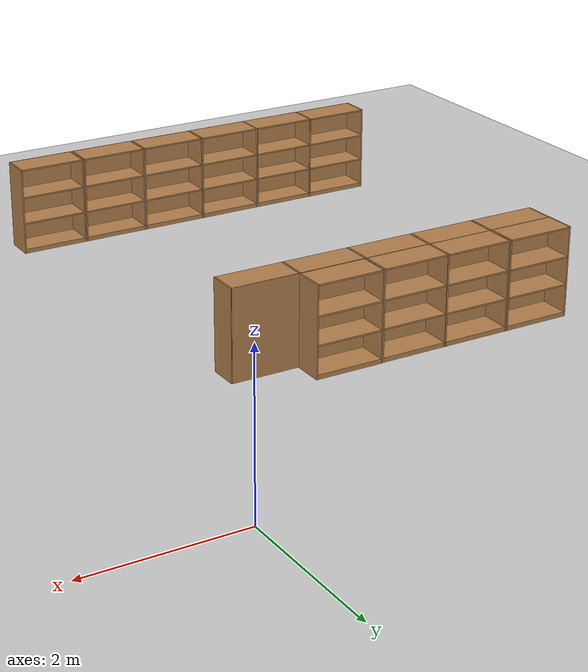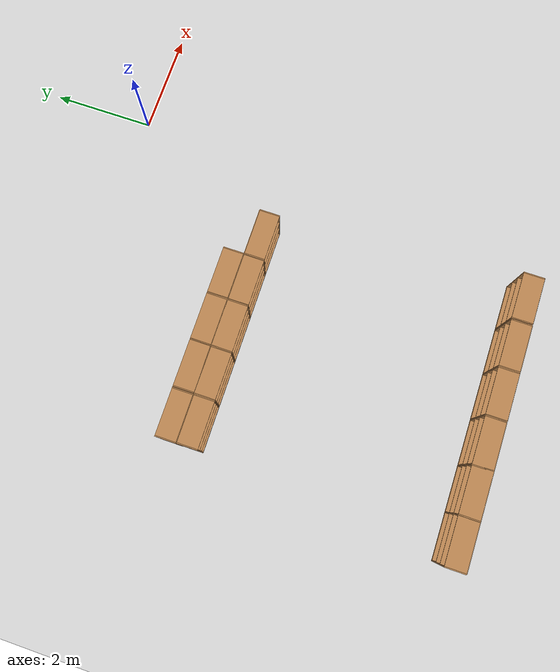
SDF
<sdf version="1.7">
 <world name="default">
  <model name="ground_plane">
   <static>1</static>
   <link name="link">
    <collision name="collision">
     <geometry><plane><normal>0 0 1</normal><size>100 100</size></plane></geometry>
     <surface><friction><ode><mu>100</mu><mu2>50</mu2></ode></friction></surface>
    </collision>
    <visual name="visual">
     <cast_shadows>0</cast_shadows>
     <geometry><plane><normal>0 0 1</normal><size>100 100</size></plane></geometry>
     <material>
      <script><uri>file://media/materials/scripts/gazebo.material</uri><name>Gazebo/Grey</name></script>
     </material>
    </visual>
   </link>
  </model>
  <model name="bookshelf_clone_0">
   <static>1</static>
   <link name="link">
    <inertial><mass>1</mass></inertial>
    <collision name="back">
     <pose>0 0.005 0.6 0 -0 0</pose>
     <geometry><box><size>0.9 0.01 1.2</size></box></geometry>
    </collision>
    <visual name="visual1">
     <pose>0 0.005 0.6 0 -0 0</pose>
     <geometry><box><size>0.9 0.01 1.2</size></box></geometry>
     <material>
      <script><uri>file://media/materials/scripts/gazebo.material</uri><name>Gazebo/Wood</name></script>
     </material>
    </visual>
    <collision name="left_side">
     <pose>0.45 -0.195 0.6 0 -0 0</pose>
     <geometry><box><size>0.02 0.4 1.2</size></box></geometry>
    </collision>
    <visual name="visual2">
     <pose>0.45 -0.195 0.6 0 -0 0</pose>
     <geometry><box><size>0.02 0.4 1.2</size></box></geometry>
     <material>
      <script><uri>file://media/materials/scripts/gazebo.material</uri><name>Gazebo/Wood</name></script>
     </material>
    </visual>
    <collision name="right_side">
     <pose>-0.45 -0.195 0.6 0 -0 0</pose>
     <geometry><box><size>0.02 0.4 1.2</size></box></geometry>
    </collision>
    <visual name="visual3">
     <pose>-0.45 -0.195 0.6 0 -0 0</pose>
     <geometry><box><size>0.02 0.4 1.2</size></box></geometry>
     <material>
      <script><uri>file://media/materials/scripts/gazebo.material</uri><name>Gazebo/Wood</name></script>
     </material>
    </visual>
    <collision name="bottom">
     <pose>0 -0.195 0.03 0 -0 0</pose>
     <geometry><box><size>0.88 0.4 0.06</size></box></geometry>
    </collision>
    <visual name="visual4">
     <pose>0 -0.195 0.03 0 -0 0</pose>
     <geometry><box><size>0.88 0.4 0.06</size></box></geometry>
     <material>
      <script><uri>file://media/materials/scripts/gazebo.material</uri><name>Gazebo/Wood</name></script>
     </material>
    </visual>
    <collision name="top">
     <pose>0 -0.195 1.19 0 -0 0</pose>
     <geometry><box><size>0.88 0.4 0.02</size></box></geometry>
    </collision>
    <visual name="visual5">
     <pose>0 -0.195 1.19 0 -0 0</pose>
     <geometry><box><size>0.88 0.4 0.02</size></box></geometry>
     <material>
      <script><uri>file://media/materials/scripts/gazebo.material</uri><name>Gazebo/Wood</name></script>
     </material>
    </visual>
    <collision name="low_shelf">
     <pose>0 -0.195 0.43 0 -0 0</pose>
     <geometry><box><size>0.88 0.4 0.02</size></box></geometry>
    </collision>
    <visual name="visual6">
     <pose>0 -0.195 0.43 0 -0 0</pose>
     <geometry><box><size>0.88 0.4 0.02</size></box></geometry>
     <material>
      <script><uri>file://media/materials/scripts/gazebo.material</uri><name>Gazebo/Wood</name></script>
     </material>
    </visual>
    <collision name="high_shelf">
     <pose>0 -0.195 0.8 0 -0 0</pose>
     <geometry><box><size>0.88 0.4 0.02</size></box></geometry>
    </collision>
    <visual name="visual7">
     <pose>0 -0.195 0.8 0 -0 0</pose>
     <geometry><box><size>0.88 0.4 0.02</size></box></geometry>
     <material>
      <script><uri>file://media/materials/scripts/gazebo.material</uri><name>Gazebo/Wood</name></script>
     </material>
    </visual>
   </link>
   <pose>-1.44106 -8.39134 0 0 0 -3.14107</pose>
  </model>
  <model name="bookshelf_clone_0_clone">
   <static>1</static>
   <link name="link">
    <inertial><mass>1</mass></inertial>
    <collision name="back">
     <pose>0 0.005 0.6 0 -0 0</pose>
     <geometry><box><size>0.9 0.01 1.2</size></box></geometry>
    </collision>
    <visual name="visual1">
     <pose>0 0.005 0.6 0 -0 0</pose>
     <geometry><box><size>0.9 0.01 1.2</size></box></geometry>
     <material>
      <script><uri>file://media/materials/scripts/gazebo.material</uri><name>Gazebo/Wood</name></script>
     </material>
    </visual>
    <collision name="left_side">
     <pose>0.45 -0.195 0.6 0 -0 0</pose>
     <geometry><box><size>0.02 0.4 1.2</size></box></geometry>
    </collision>
    <visual name="visual2">
     <pose>0.45 -0.195 0.6 0 -0 0</pose>
     <geometry><box><size>0.02 0.4 1.2</size></box></geometry>
     <material>
      <script><uri>file://media/materials/scripts/gazebo.material</uri><name>Gazebo/Wood</name></script>
     </material>
    </visual>
    <collision name="right_side">
     <pose>-0.45 -0.195 0.6 0 -0 0</pose>
     <geometry><box><size>0.02 0.4 1.2</size></box></geometry>
    </collision>
    <visual name="visual3">
     <pose>-0.45 -0.195 0.6 0 -0 0</pose>
     <geometry><box><size>0.02 0.4 1.2</size></box></geometry>
     <material>
      <script><uri>file://media/materials/scripts/gazebo.material</uri><name>Gazebo/Wood</name></script>
     </material>
    </visual>
    <collision name="bottom">
     <pose>0 -0.195 0.03 0 -0 0</pose>
     <geometry><box><size>0.88 0.4 0.06</size></box></geometry>
    </collision>
    <visual name="visual4">
     <pose>0 -0.195 0.03 0 -0 0</pose>
     <geometry><box><size>0.88 0.4 0.06</size></box></geometry>
     <material>
      <script><uri>file://media/materials/scripts/gazebo.material</uri><name>Gazebo/Wood</name></script>
     </material>
    </visual>
    <collision name="top">
     <pose>0 -0.195 1.19 0 -0 0</pose>
     <geometry><box><size>0.88 0.4 0.02</size></box></geometry>
    </collision>
    <visual name="visual5">
     <pose>0 -0.195 1.19 0 -0 0</pose>
     <geometry><box><size>0.88 0.4 0.02</size></box></geometry>
     <material>
      <script><uri>file://media/materials/scripts/gazebo.material</uri><name>Gazebo/Wood</name></script>
     </material>
    </visual>
    <collision name="low_shelf">
     <pose>0 -0.195 0.43 0 -0 0</pose>
     <geometry><box><size>0.88 0.4 0.02</size></box></geometry>
    </collision>
    <visual name="visual6">
     <pose>0 -0.195 0.43 0 -0 0</pose>
     <geometry><box><size>0.88 0.4 0.02</size></box></geometry>
     <material>
      <script><uri>file://media/materials/scripts/gazebo.material</uri><name>Gazebo/Wood</name></script>
     </material>
    </visual>
    <collision name="high_shelf">
     <pose>0 -0.195 0.8 0 -0 0</pose>
     <geometry><box><size>0.88 0.4 0.02</size></box></geometry>
    </collision>
    <visual name="visual7">
     <pose>0 -0.195 0.8 0 -0 0</pose>
     <geometry><box><size>0.88 0.4 0.02</size></box></geometry>
     <material>
      <script><uri>file://media/materials/scripts/gazebo.material</uri><name>Gazebo/Wood</name></script>
     </material>
    </visual>
   </link>
   <pose>-2.37014 -8.39134 0 0 0 -3.14107</pose>
  </model>
  <model name="bookshelf_clone_0_clone_0">
   <static>1</static>
   <link name="link">
    <inertial><mass>1</mass></inertial>
    <collision name="back">
     <pose>0 0.005 0.6 0 -0 0</pose>
     <geometry><box><size>0.9 0.01 1.2</size></box></geometry>
    </collision>
    <visual name="visual1">
     <pose>0 0.005 0.6 0 -0 0</pose>
     <geometry><box><size>0.9 0.01 1.2</size></box></geometry>
     <material>
      <script><uri>file://media/materials/scripts/gazebo.material</uri><name>Gazebo/Wood</name></script>
     </material>
    </visual>
    <collision name="left_side">
     <pose>0.45 -0.195 0.6 0 -0 0</pose>
     <geometry><box><size>0.02 0.4 1.2</size></box></geometry>
    </collision>
    <visual name="visual2">
     <pose>0.45 -0.195 0.6 0 -0 0</pose>
     <geometry><box><size>0.02 0.4 1.2</size></box></geometry>
     <material>
      <script><uri>file://media/materials/scripts/gazebo.material</uri><name>Gazebo/Wood</name></script>
     </material>
    </visual>
    <collision name="right_side">
     <pose>-0.45 -0.195 0.6 0 -0 0</pose>
     <geometry><box><size>0.02 0.4 1.2</size></box></geometry>
    </collision>
    <visual name="visual3">
     <pose>-0.45 -0.195 0.6 0 -0 0</pose>
     <geometry><box><size>0.02 0.4 1.2</size></box></geometry>
     <material>
      <script><uri>file://media/materials/scripts/gazebo.material</uri><name>Gazebo/Wood</name></script>
     </material>
    </visual>
    <collision name="bottom">
     <pose>0 -0.195 0.03 0 -0 0</pose>
     <geometry><box><size>0.88 0.4 0.06</size></box></geometry>
    </collision>
    <visual name="visual4">
     <pose>0 -0.195 0.03 0 -0 0</pose>
     <geometry><box><size>0.88 0.4 0.06</size></box></geometry>
     <material>
      <script><uri>file://media/materials/scripts/gazebo.material</uri><name>Gazebo/Wood</name></script>
     </material>
    </visual>
    <collision name="top">
     <pose>0 -0.195 1.19 0 -0 0</pose>
     <geometry><box><size>0.88 0.4 0.02</size></box></geometry>
    </collision>
    <visual name="visual5">
     <pose>0 -0.195 1.19 0 -0 0</pose>
     <geometry><box><size>0.88 0.4 0.02</size></box></geometry>
     <material>
      <script><uri>file://media/materials/scripts/gazebo.material</uri><name>Gazebo/Wood</name></script>
     </material>
    </visual>
    <collision name="low_shelf">
     <pose>0 -0.195 0.43 0 -0 0</pose>
     <geometry><box><size>0.88 0.4 0.02</size></box></geometry>
    </collision>
    <visual name="visual6">
     <pose>0 -0.195 0.43 0 -0 0</pose>
     <geometry><box><size>0.88 0.4 0.02</size></box></geometry>
     <material>
      <script><uri>file://media/materials/scripts/gazebo.material</uri><name>Gazebo/Wood</name></script>
     </material>
    </visual>
    <collision name="high_shelf">
     <pose>0 -0.195 0.8 0 -0 0</pose>
     <geometry><box><size>0.88 0.4 0.02</size></box></geometry>
    </collision>
    <visual name="visual7">
     <pose>0 -0.195 0.8 0 -0 0</pose>
     <geometry><box><size>0.88 0.4 0.02</size></box></geometry>
     <material>
      <script><uri>file://media/materials/scripts/gazebo.material</uri><name>Gazebo/Wood</name></script>
     </material>
    </visual>
   </link>
   <pose>-3.28877 -8.39134 0 0 0 -3.14107</pose>
  </model>
  <model name="bookshelf_clone_0_clone_0_clone">
   <static>1</static>
   <link name="link">
    <inertial><mass>1</mass></inertial>
    <collision name="back">
     <pose>0 0.005 0.6 0 -0 0</pose>
     <geometry><box><size>0.9 0.01 1.2</size></box></geometry>
    </collision>
    <visual name="visual1">
     <pose>0 0.005 0.6 0 -0 0</pose>
     <geometry><box><size>0.9 0.01 1.2</size></box></geometry>
     <material>
      <script><uri>file://media/materials/scripts/gazebo.material</uri><name>Gazebo/Wood</name></script>
     </material>
    </visual>
    <collision name="left_side">
     <pose>0.45 -0.195 0.6 0 -0 0</pose>
     <geometry><box><size>0.02 0.4 1.2</size></box></geometry>
    </collision>
    <visual name="visual2">
     <pose>0.45 -0.195 0.6 0 -0 0</pose>
     <geometry><box><size>0.02 0.4 1.2</size></box></geometry>
     <material>
      <script><uri>file://media/materials/scripts/gazebo.material</uri><name>Gazebo/Wood</name></script>
     </material>
    </visual>
    <collision name="right_side">
     <pose>-0.45 -0.195 0.6 0 -0 0</pose>
     <geometry><box><size>0.02 0.4 1.2</size></box></geometry>
    </collision>
    <visual name="visual3">
     <pose>-0.45 -0.195 0.6 0 -0 0</pose>
     <geometry><box><size>0.02 0.4 1.2</size></box></geometry>
     <material>
      <script><uri>file://media/materials/scripts/gazebo.material</uri><name>Gazebo/Wood</name></script>
     </material>
    </visual>
    <collision name="bottom">
     <pose>0 -0.195 0.03 0 -0 0</pose>
     <geometry><box><size>0.88 0.4 0.06</size></box></geometry>
    </collision>
    <visual name="visual4">
     <pose>0 -0.195 0.03 0 -0 0</pose>
     <geometry><box><size>0.88 0.4 0.06</size></box></geometry>
     <material>
      <script><uri>file://media/materials/scripts/gazebo.material</uri><name>Gazebo/Wood</name></script>
     </material>
    </visual>
    <collision name="top">
     <pose>0 -0.195 1.19 0 -0 0</pose>
     <geometry><box><size>0.88 0.4 0.02</size></box></geometry>
    </collision>
    <visual name="visual5">
     <pose>0 -0.195 1.19 0 -0 0</pose>
     <geometry><box><size>0.88 0.4 0.02</size></box></geometry>
     <material>
      <script><uri>file://media/materials/scripts/gazebo.material</uri><name>Gazebo/Wood</name></script>
     </material>
    </visual>
    <collision name="low_shelf">
     <pose>0 -0.195 0.43 0 -0 0</pose>
     <geometry><box><size>0.88 0.4 0.02</size></box></geometry>
    </collision>
    <visual name="visual6">
     <pose>0 -0.195 0.43 0 -0 0</pose>
     <geometry><box><size>0.88 0.4 0.02</size></box></geometry>
     <material>
      <script><uri>file://media/materials/scripts/gazebo.material</uri><name>Gazebo/Wood</name></script>
     </material>
    </visual>
    <collision name="high_shelf">
     <pose>0 -0.195 0.8 0 -0 0</pose>
     <geometry><box><size>0.88 0.4 0.02</size></box></geometry>
    </collision>
    <visual name="visual7">
     <pose>0 -0.195 0.8 0 -0 0</pose>
     <geometry><box><size>0.88 0.4 0.02</size></box></geometry>
     <material>
      <script><uri>file://media/materials/scripts/gazebo.material</uri><name>Gazebo/Wood</name></script>
     </material>
    </visual>
   </link>
   <pose>-4.203 -8.39134 0 0 0 -3.14107</pose>
  </model>
  <model name="bookshelf_clone_0_clone_0_clone_clone_clone_clone_clone_1">
   <static>1</static>
   <link name="link">
    <inertial><mass>1</mass></inertial>
    <collision name="back">
     <pose>0 0.005 0.6 0 -0 0</pose>
     <geometry><box><size>0.9 0.01 1.2</size></box></geometry>
    </collision>
    <visual name="visual1">
     <pose>0 0.005 0.6 0 -0 0</pose>
     <geometry><box><size>0.9 0.01 1.2</size></box></geometry>
     <material>
      <script><uri>file://media/materials/scripts/gazebo.material</uri><name>Gazebo/Wood</name></script>
     </material>
    </visual>
    <collision name="left_side">
     <pose>0.45 -0.195 0.6 0 -0 0</pose>
     <geometry><box><size>0.02 0.4 1.2</size></box></geometry>
    </collision>
    <visual name="visual2">
     <pose>0.45 -0.195 0.6 0 -0 0</pose>
     <geometry><box><size>0.02 0.4 1.2</size></box></geometry>
     <material>
      <script><uri>file://media/materials/scripts/gazebo.material</uri><name>Gazebo/Wood</name></script>
     </material>
    </visual>
    <collision name="right_side">
     <pose>-0.45 -0.195 0.6 0 -0 0</pose>
     <geometry><box><size>0.02 0.4 1.2</size></box></geometry>
    </collision>
    <visual name="visual3">
     <pose>-0.45 -0.195 0.6 0 -0 0</pose>
     <geometry><box><size>0.02 0.4 1.2</size></box></geometry>
     <material>
      <script><uri>file://media/materials/scripts/gazebo.material</uri><name>Gazebo/Wood</name></script>
     </material>
    </visual>
    <collision name="bottom">
     <pose>0 -0.195 0.03 0 -0 0</pose>
     <geometry><box><size>0.88 0.4 0.06</size></box></geometry>
    </collision>
    <visual name="visual4">
     <pose>0 -0.195 0.03 0 -0 0</pose>
     <geometry><box><size>0.88 0.4 0.06</size></box></geometry>
     <material>
      <script><uri>file://media/materials/scripts/gazebo.material</uri><name>Gazebo/Wood</name></script>
     </material>
    </visual>
    <collision name="top">
     <pose>0 -0.195 1.19 0 -0 0</pose>
     <geometry><box><size>0.88 0.4 0.02</size></box></geometry>
    </collision>
    <visual name="visual5">
     <pose>0 -0.195 1.19 0 -0 0</pose>
     <geometry><box><size>0.88 0.4 0.02</size></box></geometry>
     <material>
      <script><uri>file://media/materials/scripts/gazebo.material</uri><name>Gazebo/Wood</name></script>
     </material>
    </visual>
    <collision name="low_shelf">
     <pose>0 -0.195 0.43 0 -0 0</pose>
     <geometry><box><size>0.88 0.4 0.02</size></box></geometry>
    </collision>
    <visual name="visual6">
     <pose>0 -0.195 0.43 0 -0 0</pose>
     <geometry><box><size>0.88 0.4 0.02</size></box></geometry>
     <material>
      <script><uri>file://media/materials/scripts/gazebo.material</uri><name>Gazebo/Wood</name></script>
     </material>
    </visual>
    <collision name="high_shelf">
     <pose>0 -0.195 0.8 0 -0 0</pose>
     <geometry><box><size>0.88 0.4 0.02</size></box></geometry>
    </collision>
    <visual name="visual7">
     <pose>0 -0.195 0.8 0 -0 0</pose>
     <geometry><box><size>0.88 0.4 0.02</size></box></geometry>
     <material>
      <script><uri>file://media/materials/scripts/gazebo.material</uri><name>Gazebo/Wood</name></script>
     </material>
    </visual>
   </link>
   <pose>-2.75543 -2.94994 0 0 0 -3.14107</pose>
  </model>
  <model name="bookshelf_clone_0_clone_0_clone_clone_clone_clone_clone_1_clone">
   <static>1</static>
   <link name="link">
    <inertial><mass>1</mass></inertial>
    <collision name="back">
     <pose>0 0.005 0.6 0 -0 0</pose>
     <geometry><box><size>0.9 0.01 1.2</size></box></geometry>
    </collision>
    <visual name="visual1">
     <pose>0 0.005 0.6 0 -0 0</pose>
     <geometry><box><size>0.9 0.01 1.2</size></box></geometry>
     <material>
      <script><uri>file://media/materials/scripts/gazebo.material</uri><name>Gazebo/Wood</name></script>
     </material>
    </visual>
    <collision name="left_side">
     <pose>0.45 -0.195 0.6 0 -0 0</pose>
     <geometry><box><size>0.02 0.4 1.2</size></box></geometry>
    </collision>
    <visual name="visual2">
     <pose>0.45 -0.195 0.6 0 -0 0</pose>
     <geometry><box><size>0.02 0.4 1.2</size></box></geometry>
     <material>
      <script><uri>file://media/materials/scripts/gazebo.material</uri><name>Gazebo/Wood</name></script>
     </material>
    </visual>
    <collision name="right_side">
     <pose>-0.45 -0.195 0.6 0 -0 0</pose>
     <geometry><box><size>0.02 0.4 1.2</size></box></geometry>
    </collision>
    <visual name="visual3">
     <pose>-0.45 -0.195 0.6 0 -0 0</pose>
     <geometry><box><size>0.02 0.4 1.2</size></box></geometry>
     <material>
      <script><uri>file://media/materials/scripts/gazebo.material</uri><name>Gazebo/Wood</name></script>
     </material>
    </visual>
    <collision name="bottom">
     <pose>0 -0.195 0.03 0 -0 0</pose>
     <geometry><box><size>0.88 0.4 0.06</size></box></geometry>
    </collision>
    <visual name="visual4">
     <pose>0 -0.195 0.03 0 -0 0</pose>
     <geometry><box><size>0.88 0.4 0.06</size></box></geometry>
     <material>
      <script><uri>file://media/materials/scripts/gazebo.material</uri><name>Gazebo/Wood</name></script>
     </material>
    </visual>
    <collision name="top">
     <pose>0 -0.195 1.19 0 -0 0</pose>
     <geometry><box><size>0.88 0.4 0.02</size></box></geometry>
    </collision>
    <visual name="visual5">
     <pose>0 -0.195 1.19 0 -0 0</pose>
     <geometry><box><size>0.88 0.4 0.02</size></box></geometry>
     <material>
      <script><uri>file://media/materials/scripts/gazebo.material</uri><name>Gazebo/Wood</name></script>
     </material>
    </visual>
    <collision name="low_shelf">
     <pose>0 -0.195 0.43 0 -0 0</pose>
     <geometry><box><size>0.88 0.4 0.02</size></box></geometry>
    </collision>
    <visual name="visual6">
     <pose>0 -0.195 0.43 0 -0 0</pose>
     <geometry><box><size>0.88 0.4 0.02</size></box></geometry>
     <material>
      <script><uri>file://media/materials/scripts/gazebo.material</uri><name>Gazebo/Wood</name></script>
     </material>
    </visual>
    <collision name="high_shelf">
     <pose>0 -0.195 0.8 0 -0 0</pose>
     <geometry><box><size>0.88 0.4 0.02</size></box></geometry>
    </collision>
    <visual name="visual7">
     <pose>0 -0.195 0.8 0 -0 0</pose>
     <geometry><box><size>0.88 0.4 0.02</size></box></geometry>
     <material>
      <script><uri>file://media/materials/scripts/gazebo.material</uri><name>Gazebo/Wood</name></script>
     </material>
    </visual>
   </link>
   <pose>-3.67093 -2.94994 0.004614 0 0 -3.14107</pose>
  </model>
  <model name="bookshelf_clone_0_clone_0_clone_clone_clone_clone_clone_1_clone_clone">
   <static>1</static>
   <link name="link">
    <inertial><mass>1</mass></inertial>
    <collision name="back">
     <pose>0 0.005 0.6 0 -0 0</pose>
     <geometry><box><size>0.9 0.01 1.2</size></box></geometry>
    </collision>
    <visual name="visual1">
     <pose>0 0.005 0.6 0 -0 0</pose>
     <geometry><box><size>0.9 0.01 1.2</size></box></geometry>
     <material>
      <script><uri>file://media/materials/scripts/gazebo.material</uri><name>Gazebo/Wood</name></script>
     </material>
    </visual>
    <collision name="left_side">
     <pose>0.45 -0.195 0.6 0 -0 0</pose>
     <geometry><box><size>0.02 0.4 1.2</size></box></geometry>
    </collision>
    <visual name="visual2">
     <pose>0.45 -0.195 0.6 0 -0 0</pose>
     <geometry><box><size>0.02 0.4 1.2</size></box></geometry>
     <material>
      <script><uri>file://media/materials/scripts/gazebo.material</uri><name>Gazebo/Wood</name></script>
     </material>
    </visual>
    <collision name="right_side">
     <pose>-0.45 -0.195 0.6 0 -0 0</pose>
     <geometry><box><size>0.02 0.4 1.2</size></box></geometry>
    </collision>
    <visual name="visual3">
     <pose>-0.45 -0.195 0.6 0 -0 0</pose>
     <geometry><box><size>0.02 0.4 1.2</size></box></geometry>
     <material>
      <script><uri>file://media/materials/scripts/gazebo.material</uri><name>Gazebo/Wood</name></script>
     </material>
    </visual>
    <collision name="bottom">
     <pose>0 -0.195 0.03 0 -0 0</pose>
     <geometry><box><size>0.88 0.4 0.06</size></box></geometry>
    </collision>
    <visual name="visual4">
     <pose>0 -0.195 0.03 0 -0 0</pose>
     <geometry><box><size>0.88 0.4 0.06</size></box></geometry>
     <material>
      <script><uri>file://media/materials/scripts/gazebo.material</uri><name>Gazebo/Wood</name></script>
     </material>
    </visual>
    <collision name="top">
     <pose>0 -0.195 1.19 0 -0 0</pose>
     <geometry><box><size>0.88 0.4 0.02</size></box></geometry>
    </collision>
    <visual name="visual5">
     <pose>0 -0.195 1.19 0 -0 0</pose>
     <geometry><box><size>0.88 0.4 0.02</size></box></geometry>
     <material>
      <script><uri>file://media/materials/scripts/gazebo.material</uri><name>Gazebo/Wood</name></script>
     </material>
    </visual>
    <collision name="low_shelf">
     <pose>0 -0.195 0.43 0 -0 0</pose>
     <geometry><box><size>0.88 0.4 0.02</size></box></geometry>
    </collision>
    <visual name="visual6">
     <pose>0 -0.195 0.43 0 -0 0</pose>
     <geometry><box><size>0.88 0.4 0.02</size></box></geometry>
     <material>
      <script><uri>file://media/materials/scripts/gazebo.material</uri><name>Gazebo/Wood</name></script>
     </material>
    </visual>
    <collision name="high_shelf">
     <pose>0 -0.195 0.8 0 -0 0</pose>
     <geometry><box><size>0.88 0.4 0.02</size></box></geometry>
    </collision>
    <visual name="visual7">
     <pose>0 -0.195 0.8 0 -0 0</pose>
     <geometry><box><size>0.88 0.4 0.02</size></box></geometry>
     <material>
      <script><uri>file://media/materials/scripts/gazebo.material</uri><name>Gazebo/Wood</name></script>
     </material>
    </visual>
   </link>
   <pose>-4.57913 -2.94994 0.004614 0 0 -3.14107</pose>
  </model>
  <model name="bookshelf_clone_0_clone_0_clone_clone_clone_clone_clone_1_clone_clone_clone">
   <static>1</static>
   <link name="link">
    <inertial><mass>1</mass></inertial>
    <collision name="back">
     <pose>0 0.005 0.6 0 -0 0</pose>
     <geometry><box><size>0.9 0.01 1.2</size></box></geometry>
    </collision>
    <visual name="visual1">
     <pose>0 0.005 0.6 0 -0 0</pose>
     <geometry><box><size>0.9 0.01 1.2</size></box></geometry>
     <material>
      <script><uri>file://media/materials/scripts/gazebo.material</uri><name>Gazebo/Wood</name></script>
     </material>
    </visual>
    <collision name="left_side">
     <pose>0.45 -0.195 0.6 0 -0 0</pose>
     <geometry><box><size>0.02 0.4 1.2</size></box></geometry>
    </collision>
    <visual name="visual2">
     <pose>0.45 -0.195 0.6 0 -0 0</pose>
     <geometry><box><size>0.02 0.4 1.2</size></box></geometry>
     <material>
      <script><uri>file://media/materials/scripts/gazebo.material</uri><name>Gazebo/Wood</name></script>
     </material>
    </visual>
    <collision name="right_side">
     <pose>-0.45 -0.195 0.6 0 -0 0</pose>
     <geometry><box><size>0.02 0.4 1.2</size></box></geometry>
    </collision>
    <visual name="visual3">
     <pose>-0.45 -0.195 0.6 0 -0 0</pose>
     <geometry><box><size>0.02 0.4 1.2</size></box></geometry>
     <material>
      <script><uri>file://media/materials/scripts/gazebo.material</uri><name>Gazebo/Wood</name></script>
     </material>
    </visual>
    <collision name="bottom">
     <pose>0 -0.195 0.03 0 -0 0</pose>
     <geometry><box><size>0.88 0.4 0.06</size></box></geometry>
    </collision>
    <visual name="visual4">
     <pose>0 -0.195 0.03 0 -0 0</pose>
     <geometry><box><size>0.88 0.4 0.06</size></box></geometry>
     <material>
      <script><uri>file://media/materials/scripts/gazebo.material</uri><name>Gazebo/Wood</name></script>
     </material>
    </visual>
    <collision name="top">
     <pose>0 -0.195 1.19 0 -0 0</pose>
     <geometry><box><size>0.88 0.4 0.02</size></box></geometry>
    </collision>
    <visual name="visual5">
     <pose>0 -0.195 1.19 0 -0 0</pose>
     <geometry><box><size>0.88 0.4 0.02</size></box></geometry>
     <material>
      <script><uri>file://media/materials/scripts/gazebo.material</uri><name>Gazebo/Wood</name></script>
     </material>
    </visual>
    <collision name="low_shelf">
     <pose>0 -0.195 0.43 0 -0 0</pose>
     <geometry><box><size>0.88 0.4 0.02</size></box></geometry>
    </collision>
    <visual name="visual6">
     <pose>0 -0.195 0.43 0 -0 0</pose>
     <geometry><box><size>0.88 0.4 0.02</size></box></geometry>
     <material>
      <script><uri>file://media/materials/scripts/gazebo.material</uri><name>Gazebo/Wood</name></script>
     </material>
    </visual>
    <collision name="high_shelf">
     <pose>0 -0.195 0.8 0 -0 0</pose>
     <geometry><box><size>0.88 0.4 0.02</size></box></geometry>
    </collision>
    <visual name="visual7">
     <pose>0 -0.195 0.8 0 -0 0</pose>
     <geometry><box><size>0.88 0.4 0.02</size></box></geometry>
     <material>
      <script><uri>file://media/materials/scripts/gazebo.material</uri><name>Gazebo/Wood</name></script>
     </material>
    </visual>
   </link>
   <pose>-5.50801 -2.94994 0.004614 0 0 -3.14107</pose>
  </model>
  <model name="bookshelf_clone_clone">
   <static>1</static>
   <link name="link">
    <inertial><mass>1</mass></inertial>
    <collision name="back">
     <pose>0 0.005 0.6 0 -0 0</pose>
     <geometry><box><size>0.9 0.01 1.2</size></box></geometry>
    </collision>
    <visual name="visual1">
     <pose>0 0.005 0.6 0 -0 0</pose>
     <geometry><box><size>0.9 0.01 1.2</size></box></geometry>
     <material>
      <script><uri>file://media/materials/scripts/gazebo.material</uri><name>Gazebo/Wood</name></script>
     </material>
    </visual>
    <collision name="left_side">
     <pose>0.45 -0.195 0.6 0 -0 0</pose>
     <geometry><box><size>0.02 0.4 1.2</size></box></geometry>
    </collision>
    <visual name="visual2">
     <pose>0.45 -0.195 0.6 0 -0 0</pose>
     <geometry><box><size>0.02 0.4 1.2</size></box></geometry>
     <material>
      <script><uri>file://media/materials/scripts/gazebo.material</uri><name>Gazebo/Wood</name></script>
     </material>
    </visual>
    <collision name="right_side">
     <pose>-0.45 -0.195 0.6 0 -0 0</pose>
     <geometry><box><size>0.02 0.4 1.2</size></box></geometry>
    </collision>
    <visual name="visual3">
     <pose>-0.45 -0.195 0.6 0 -0 0</pose>
     <geometry><box><size>0.02 0.4 1.2</size></box></geometry>
     <material>
      <script><uri>file://media/materials/scripts/gazebo.material</uri><name>Gazebo/Wood</name></script>
     </material>
    </visual>
    <collision name="bottom">
     <pose>0 -0.195 0.03 0 -0 0</pose>
     <geometry><box><size>0.88 0.4 0.06</size></box></geometry>
    </collision>
    <visual name="visual4">
     <pose>0 -0.195 0.03 0 -0 0</pose>
     <geometry><box><size>0.88 0.4 0.06</size></box></geometry>
     <material>
      <script><uri>file://media/materials/scripts/gazebo.material</uri><name>Gazebo/Wood</name></script>
     </material>
    </visual>
    <collision name="top">
     <pose>0 -0.195 1.19 0 -0 0</pose>
     <geometry><box><size>0.88 0.4 0.02</size></box></geometry>
    </collision>
    <visual name="visual5">
     <pose>0 -0.195 1.19 0 -0 0</pose>
     <geometry><box><size>0.88 0.4 0.02</size></box></geometry>
     <material>
      <script><uri>file://media/materials/scripts/gazebo.material</uri><name>Gazebo/Wood</name></script>
     </material>
    </visual>
    <collision name="low_shelf">
     <pose>0 -0.195 0.43 0 -0 0</pose>
     <geometry><box><size>0.88 0.4 0.02</size></box></geometry>
    </collision>
    <visual name="visual6">
     <pose>0 -0.195 0.43 0 -0 0</pose>
     <geometry><box><size>0.88 0.4 0.02</size></box></geometry>
     <material>
      <script><uri>file://media/materials/scripts/gazebo.material</uri><name>Gazebo/Wood</name></script>
     </material>
    </visual>
    <collision name="high_shelf">
     <pose>0 -0.195 0.8 0 -0 0</pose>
     <geometry><box><size>0.88 0.4 0.02</size></box></geometry>
    </collision>
    <visual name="visual7">
     <pose>0 -0.195 0.8 0 -0 0</pose>
     <geometry><box><size>0.88 0.4 0.02</size></box></geometry>
     <material>
      <script><uri>file://media/materials/scripts/gazebo.material</uri><name>Gazebo/Wood</name></script>
     </material>
    </visual>
   </link>
   <pose>-5.08941 -8.39134 0 0 0 -3.14107</pose>
  </model>
  <model name="bookshelf_clone_clone_clone">
   <static>1</static>
   <link name="link">
    <inertial><mass>1</mass></inertial>
    <collision name="back">
     <pose>0 0.005 0.6 0 -0 0</pose>
     <geometry><box><size>0.9 0.01 1.2</size></box></geometry>
    </collision>
    <visual name="visual1">
     <pose>0 0.005 0.6 0 -0 0</pose>
     <geometry><box><size>0.9 0.01 1.2</size></box></geometry>
     <material>
      <script><uri>file://media/materials/scripts/gazebo.material</uri><name>Gazebo/Wood</name></script>
     </material>
    </visual>
    <collision name="left_side">
     <pose>0.45 -0.195 0.6 0 -0 0</pose>
     <geometry><box><size>0.02 0.4 1.2</size></box></geometry>
    </collision>
    <visual name="visual2">
     <pose>0.45 -0.195 0.6 0 -0 0</pose>
     <geometry><box><size>0.02 0.4 1.2</size></box></geometry>
     <material>
      <script><uri>file://media/materials/scripts/gazebo.material</uri><name>Gazebo/Wood</name></script>
     </material>
    </visual>
    <collision name="right_side">
     <pose>-0.45 -0.195 0.6 0 -0 0</pose>
     <geometry><box><size>0.02 0.4 1.2</size></box></geometry>
    </collision>
    <visual name="visual3">
     <pose>-0.45 -0.195 0.6 0 -0 0</pose>
     <geometry><box><size>0.02 0.4 1.2</size></box></geometry>
     <material>
      <script><uri>file://media/materials/scripts/gazebo.material</uri><name>Gazebo/Wood</name></script>
     </material>
    </visual>
    <collision name="bottom">
     <pose>0 -0.195 0.03 0 -0 0</pose>
     <geometry><box><size>0.88 0.4 0.06</size></box></geometry>
    </collision>
    <visual name="visual4">
     <pose>0 -0.195 0.03 0 -0 0</pose>
     <geometry><box><size>0.88 0.4 0.06</size></box></geometry>
     <material>
      <script><uri>file://media/materials/scripts/gazebo.material</uri><name>Gazebo/Wood</name></script>
     </material>
    </visual>
    <collision name="top">
     <pose>0 -0.195 1.19 0 -0 0</pose>
     <geometry><box><size>0.88 0.4 0.02</size></box></geometry>
    </collision>
    <visual name="visual5">
     <pose>0 -0.195 1.19 0 -0 0</pose>
     <geometry><box><size>0.88 0.4 0.02</size></box></geometry>
     <material>
      <script><uri>file://media/materials/scripts/gazebo.material</uri><name>Gazebo/Wood</name></script>
     </material>
    </visual>
    <collision name="low_shelf">
     <pose>0 -0.195 0.43 0 -0 0</pose>
     <geometry><box><size>0.88 0.4 0.02</size></box></geometry>
    </collision>
    <visual name="visual6">
     <pose>0 -0.195 0.43 0 -0 0</pose>
     <geometry><box><size>0.88 0.4 0.02</size></box></geometry>
     <material>
      <script><uri>file://media/materials/scripts/gazebo.material</uri><name>Gazebo/Wood</name></script>
     </material>
    </visual>
    <collision name="high_shelf">
     <pose>0 -0.195 0.8 0 -0 0</pose>
     <geometry><box><size>0.88 0.4 0.02</size></box></geometry>
    </collision>
    <visual name="visual7">
     <pose>0 -0.195 0.8 0 -0 0</pose>
     <geometry><box><size>0.88 0.4 0.02</size></box></geometry>
     <material>
      <script><uri>file://media/materials/scripts/gazebo.material</uri><name>Gazebo/Wood</name></script>
     </material>
    </visual>
   </link>
   <pose>-5.99408 -8.39134 0 0 0 -3.14107</pose>
  </model>
  <model name="bookshelf_clone_0_clone_0_clone_clone_clone_clone_clone_1_clone_clone_clone_clone_clone_clone_clone_clone_clone_clone_0_clone_clone_clone_clone_clone_0_clone_0">
   <static>1</static>
   <link name="link">
    <inertial><mass>1</mass></inertial>
    <collision name="back">
     <pose>0 0.005 0.6 0 -0 0</pose>
     <geometry><box><size>0.9 0.01 1.2</size></box></geometry>
    </collision>
    <visual name="visual1">
     <pose>0 0.005 0.6 0 -0 0</pose>
     <geometry><box><size>0.9 0.01 1.2</size></box></geometry>
     <material>
      <script><uri>file://media/materials/scripts/gazebo.material</uri><name>Gazebo/Wood</name></script>
     </material>
    </visual>
    <collision name="left_side">
     <pose>0.45 -0.195 0.6 0 -0 0</pose>
     <geometry><box><size>0.02 0.4 1.2</size></box></geometry>
    </collision>
    <visual name="visual2">
     <pose>0.45 -0.195 0.6 0 -0 0</pose>
     <geometry><box><size>0.02 0.4 1.2</size></box></geometry>
     <material>
      <script><uri>file://media/materials/scripts/gazebo.material</uri><name>Gazebo/Wood</name></script>
     </material>
    </visual>
    <collision name="right_side">
     <pose>-0.45 -0.195 0.6 0 -0 0</pose>
     <geometry><box><size>0.02 0.4 1.2</size></box></geometry>
    </collision>
    <visual name="visual3">
     <pose>-0.45 -0.195 0.6 0 -0 0</pose>
     <geometry><box><size>0.02 0.4 1.2</size></box></geometry>
     <material>
      <script><uri>file://media/materials/scripts/gazebo.material</uri><name>Gazebo/Wood</name></script>
     </material>
    </visual>
    <collision name="bottom">
     <pose>0 -0.195 0.03 0 -0 0</pose>
     <geometry><box><size>0.88 0.4 0.06</size></box></geometry>
    </collision>
    <visual name="visual4">
     <pose>0 -0.195 0.03 0 -0 0</pose>
     <geometry><box><size>0.88 0.4 0.06</size></box></geometry>
     <material>
      <script><uri>file://media/materials/scripts/gazebo.material</uri><name>Gazebo/Wood</name></script>
     </material>
    </visual>
    <collision name="top">
     <pose>0 -0.195 1.19 0 -0 0</pose>
     <geometry><box><size>0.88 0.4 0.02</size></box></geometry>
    </collision>
    <visual name="visual5">
     <pose>0 -0.195 1.19 0 -0 0</pose>
     <geometry><box><size>0.88 0.4 0.02</size></box></geometry>
     <material>
      <script><uri>file://media/materials/scripts/gazebo.material</uri><name>Gazebo/Wood</name></script>
     </material>
    </visual>
    <collision name="low_shelf">
     <pose>0 -0.195 0.43 0 -0 0</pose>
     <geometry><box><size>0.88 0.4 0.02</size></box></geometry>
    </collision>
    <visual name="visual6">
     <pose>0 -0.195 0.43 0 -0 0</pose>
     <geometry><box><size>0.88 0.4 0.02</size></box></geometry>
     <material>
      <script><uri>file://media/materials/scripts/gazebo.material</uri><name>Gazebo/Wood</name></script>
     </material>
    </visual>
    <collision name="high_shelf">
     <pose>0 -0.195 0.8 0 -0 0</pose>
     <geometry><box><size>0.88 0.4 0.02</size></box></geometry>
    </collision>
    <visual name="visual7">
     <pose>0 -0.195 0.8 0 -0 0</pose>
     <geometry><box><size>0.88 0.4 0.02</size></box></geometry>
     <material>
      <script><uri>file://media/materials/scripts/gazebo.material</uri><name>Gazebo/Wood</name></script>
     </material>
    </visual>
   </link>
   <pose>-1.8471 -2.966 0.004614 0 -0 0.000147</pose>
  </model>
  <model name="bookshelf_clone_0_clone_0_clone_clone_clone_clone_clone_1_clone_clone_clone_clone_clone_clone_clone_clone_clone_clone_0_clone_clone_clone_clone_clone_0_clone_0_clone">
   <static>1</static>
   <link name="link">
    <inertial><mass>1</mass></inertial>
    <collision name="back">
     <pose>0 0.005 0.6 0 -0 0</pose>
     <geometry><box><size>0.9 0.01 1.2</size></box></geometry>
    </collision>
    <visual name="visual1">
     <pose>0 0.005 0.6 0 -0 0</pose>
     <geometry><box><size>0.9 0.01 1.2</size></box></geometry>
     <material>
      <script><uri>file://media/materials/scripts/gazebo.material</uri><name>Gazebo/Wood</name></script>
     </material>
    </visual>
    <collision name="left_side">
     <pose>0.45 -0.195 0.6 0 -0 0</pose>
     <geometry><box><size>0.02 0.4 1.2</size></box></geometry>
    </collision>
    <visual name="visual2">
     <pose>0.45 -0.195 0.6 0 -0 0</pose>
     <geometry><box><size>0.02 0.4 1.2</size></box></geometry>
     <material>
      <script><uri>file://media/materials/scripts/gazebo.material</uri><name>Gazebo/Wood</name></script>
     </material>
    </visual>
    <collision name="right_side">
     <pose>-0.45 -0.195 0.6 0 -0 0</pose>
     <geometry><box><size>0.02 0.4 1.2</size></box></geometry>
    </collision>
    <visual name="visual3">
     <pose>-0.45 -0.195 0.6 0 -0 0</pose>
     <geometry><box><size>0.02 0.4 1.2</size></box></geometry>
     <material>
      <script><uri>file://media/materials/scripts/gazebo.material</uri><name>Gazebo/Wood</name></script>
     </material>
    </visual>
    <collision name="bottom">
     <pose>0 -0.195 0.03 0 -0 0</pose>
     <geometry><box><size>0.88 0.4 0.06</size></box></geometry>
    </collision>
    <visual name="visual4">
     <pose>0 -0.195 0.03 0 -0 0</pose>
     <geometry><box><size>0.88 0.4 0.06</size></box></geometry>
     <material>
      <script><uri>file://media/materials/scripts/gazebo.material</uri><name>Gazebo/Wood</name></script>
     </material>
    </visual>
    <collision name="top">
     <pose>0 -0.195 1.19 0 -0 0</pose>
     <geometry><box><size>0.88 0.4 0.02</size></box></geometry>
    </collision>
    <visual name="visual5">
     <pose>0 -0.195 1.19 0 -0 0</pose>
     <geometry><box><size>0.88 0.4 0.02</size></box></geometry>
     <material>
      <script><uri>file://media/materials/scripts/gazebo.material</uri><name>Gazebo/Wood</name></script>
     </material>
    </visual>
    <collision name="low_shelf">
     <pose>0 -0.195 0.43 0 -0 0</pose>
     <geometry><box><size>0.88 0.4 0.02</size></box></geometry>
    </collision>
    <visual name="visual6">
     <pose>0 -0.195 0.43 0 -0 0</pose>
     <geometry><box><size>0.88 0.4 0.02</size></box></geometry>
     <material>
      <script><uri>file://media/materials/scripts/gazebo.material</uri><name>Gazebo/Wood</name></script>
     </material>
    </visual>
    <collision name="high_shelf">
     <pose>0 -0.195 0.8 0 -0 0</pose>
     <geometry><box><size>0.88 0.4 0.02</size></box></geometry>
    </collision>
    <visual name="visual7">
     <pose>0 -0.195 0.8 0 -0 0</pose>
     <geometry><box><size>0.88 0.4 0.02</size></box></geometry>
     <material>
      <script><uri>file://media/materials/scripts/gazebo.material</uri><name>Gazebo/Wood</name></script>
     </material>
    </visual>
   </link>
   <pose>-2.76069 -2.966 0.004614 0 -0 0.000147</pose>
  </model>
  <model name="bookshelf_clone_0_clone_0_clone_clone_clone_clone_clone_1_clone_clone_clone_clone_clone_clone_clone_clone_clone_clone_0_clone_clone_clone_clone_clone_0_clone_0_clone_clone">
   <static>1</static>
   <link name="link">
    <inertial><mass>1</mass></inertial>
    <collision name="back">
     <pose>0 0.005 0.6 0 -0 0</pose>
     <geometry><box><size>0.9 0.01 1.2</size></box></geometry>
    </collision>
    <visual name="visual1">
     <pose>0 0.005 0.6 0 -0 0</pose>
     <geometry><box><size>0.9 0.01 1.2</size></box></geometry>
     <material>
      <script><uri>file://media/materials/scripts/gazebo.material</uri><name>Gazebo/Wood</name></script>
     </material>
    </visual>
    <collision name="left_side">
     <pose>0.45 -0.195 0.6 0 -0 0</pose>
     <geometry><box><size>0.02 0.4 1.2</size></box></geometry>
    </collision>
    <visual name="visual2">
     <pose>0.45 -0.195 0.6 0 -0 0</pose>
     <geometry><box><size>0.02 0.4 1.2</size></box></geometry>
     <material>
      <script><uri>file://media/materials/scripts/gazebo.material</uri><name>Gazebo/Wood</name></script>
     </material>
    </visual>
    <collision name="right_side">
     <pose>-0.45 -0.195 0.6 0 -0 0</pose>
     <geometry><box><size>0.02 0.4 1.2</size></box></geometry>
    </collision>
    <visual name="visual3">
     <pose>-0.45 -0.195 0.6 0 -0 0</pose>
     <geometry><box><size>0.02 0.4 1.2</size></box></geometry>
     <material>
      <script><uri>file://media/materials/scripts/gazebo.material</uri><name>Gazebo/Wood</name></script>
     </material>
    </visual>
    <collision name="bottom">
     <pose>0 -0.195 0.03 0 -0 0</pose>
     <geometry><box><size>0.88 0.4 0.06</size></box></geometry>
    </collision>
    <visual name="visual4">
     <pose>0 -0.195 0.03 0 -0 0</pose>
     <geometry><box><size>0.88 0.4 0.06</size></box></geometry>
     <material>
      <script><uri>file://media/materials/scripts/gazebo.material</uri><name>Gazebo/Wood</name></script>
     </material>
    </visual>
    <collision name="top">
     <pose>0 -0.195 1.19 0 -0 0</pose>
     <geometry><box><size>0.88 0.4 0.02</size></box></geometry>
    </collision>
    <visual name="visual5">
     <pose>0 -0.195 1.19 0 -0 0</pose>
     <geometry><box><size>0.88 0.4 0.02</size></box></geometry>
     <material>
      <script><uri>file://media/materials/scripts/gazebo.material</uri><name>Gazebo/Wood</name></script>
     </material>
    </visual>
    <collision name="low_shelf">
     <pose>0 -0.195 0.43 0 -0 0</pose>
     <geometry><box><size>0.88 0.4 0.02</size></box></geometry>
    </collision>
    <visual name="visual6">
     <pose>0 -0.195 0.43 0 -0 0</pose>
     <geometry><box><size>0.88 0.4 0.02</size></box></geometry>
     <material>
      <script><uri>file://media/materials/scripts/gazebo.material</uri><name>Gazebo/Wood</name></script>
     </material>
    </visual>
    <collision name="high_shelf">
     <pose>0 -0.195 0.8 0 -0 0</pose>
     <geometry><box><size>0.88 0.4 0.02</size></box></geometry>
    </collision>
    <visual name="visual7">
     <pose>0 -0.195 0.8 0 -0 0</pose>
     <geometry><box><size>0.88 0.4 0.02</size></box></geometry>
     <material>
      <script><uri>file://media/materials/scripts/gazebo.material</uri><name>Gazebo/Wood</name></script>
     </material>
    </visual>
   </link>
   <pose>-3.67209 -2.966 0.004614 0 -0 0.000147</pose>
  </model>
  <model name="bookshelf_clone_0_clone_0_clone_clone_clone_clone_clone_1_clone_clone_clone_clone_clone_clone_clone_clone_clone_clone_0_clone_clone_clone_clone_clone_0_clone_0_clone_clone_0">
   <static>1</static>
   <link name="link">
    <inertial><mass>1</mass></inertial>
    <collision name="back">
     <pose>0 0.005 0.6 0 -0 0</pose>
     <geometry><box><size>0.9 0.01 1.2</size></box></geometry>
    </collision>
    <visual name="visual1">
     <pose>0 0.005 0.6 0 -0 0</pose>
     <geometry><box><size>0.9 0.01 1.2</size></box></geometry>
     <material>
      <script><uri>file://media/materials/scripts/gazebo.material</uri><name>Gazebo/Wood</name></script>
     </material>
    </visual>
    <collision name="left_side">
     <pose>0.45 -0.195 0.6 0 -0 0</pose>
     <geometry><box><size>0.02 0.4 1.2</size></box></geometry>
    </collision>
    <visual name="visual2">
     <pose>0.45 -0.195 0.6 0 -0 0</pose>
     <geometry><box><size>0.02 0.4 1.2</size></box></geometry>
     <material>
      <script><uri>file://media/materials/scripts/gazebo.material</uri><name>Gazebo/Wood</name></script>
     </material>
    </visual>
    <collision name="right_side">
     <pose>-0.45 -0.195 0.6 0 -0 0</pose>
     <geometry><box><size>0.02 0.4 1.2</size></box></geometry>
    </collision>
    <visual name="visual3">
     <pose>-0.45 -0.195 0.6 0 -0 0</pose>
     <geometry><box><size>0.02 0.4 1.2</size></box></geometry>
     <material>
      <script><uri>file://media/materials/scripts/gazebo.material</uri><name>Gazebo/Wood</name></script>
     </material>
    </visual>
    <collision name="bottom">
     <pose>0 -0.195 0.03 0 -0 0</pose>
     <geometry><box><size>0.88 0.4 0.06</size></box></geometry>
    </collision>
    <visual name="visual4">
     <pose>0 -0.195 0.03 0 -0 0</pose>
     <geometry><box><size>0.88 0.4 0.06</size></box></geometry>
     <material>
      <script><uri>file://media/materials/scripts/gazebo.material</uri><name>Gazebo/Wood</name></script>
     </material>
    </visual>
    <collision name="top">
     <pose>0 -0.195 1.19 0 -0 0</pose>
     <geometry><box><size>0.88 0.4 0.02</size></box></geometry>
    </collision>
    <visual name="visual5">
     <pose>0 -0.195 1.19 0 -0 0</pose>
     <geometry><box><size>0.88 0.4 0.02</size></box></geometry>
     <material>
      <script><uri>file://media/materials/scripts/gazebo.material</uri><name>Gazebo/Wood</name></script>
     </material>
    </visual>
    <collision name="low_shelf">
     <pose>0 -0.195 0.43 0 -0 0</pose>
     <geometry><box><size>0.88 0.4 0.02</size></box></geometry>
    </collision>
    <visual name="visual6">
     <pose>0 -0.195 0.43 0 -0 0</pose>
     <geometry><box><size>0.88 0.4 0.02</size></box></geometry>
     <material>
      <script><uri>file://media/materials/scripts/gazebo.material</uri><name>Gazebo/Wood</name></script>
     </material>
    </visual>
    <collision name="high_shelf">
     <pose>0 -0.195 0.8 0 -0 0</pose>
     <geometry><box><size>0.88 0.4 0.02</size></box></geometry>
    </collision>
    <visual name="visual7">
     <pose>0 -0.195 0.8 0 -0 0</pose>
     <geometry><box><size>0.88 0.4 0.02</size></box></geometry>
     <material>
      <script><uri>file://media/materials/scripts/gazebo.material</uri><name>Gazebo/Wood</name></script>
     </material>
    </visual>
   </link>
   <pose>-4.5864 -2.966 0.004614 0 -0 0.000147</pose>
  </model>
  <model name="bookshelf_clone_0_clone_0_clone_clone_clone_clone_clone_1_clone_clone_clone_clone_clone_clone_clone_clone_clone_clone_0_clone_clone_clone_clone_clone_0_clone_0_clone_clone_1">
   <static>1</static>
   <link name="link">
    <inertial><mass>1</mass></inertial>
    <collision name="back">
     <pose>0 0.005 0.6 0 -0 0</pose>
     <geometry><box><size>0.9 0.01 1.2</size></box></geometry>
    </collision>
    <visual name="visual1">
     <pose>0 0.005 0.6 0 -0 0</pose>
     <geometry><box><size>0.9 0.01 1.2</size></box></geometry>
     <material>
      <script><uri>file://media/materials/scripts/gazebo.material</uri><name>Gazebo/Wood</name></script>
     </material>
    </visual>
    <collision name="left_side">
     <pose>0.45 -0.195 0.6 0 -0 0</pose>
     <geometry><box><size>0.02 0.4 1.2</size></box></geometry>
    </collision>
    <visual name="visual2">
     <pose>0.45 -0.195 0.6 0 -0 0</pose>
     <geometry><box><size>0.02 0.4 1.2</size></box></geometry>
     <material>
      <script><uri>file://media/materials/scripts/gazebo.material</uri><name>Gazebo/Wood</name></script>
     </material>
    </visual>
    <collision name="right_side">
     <pose>-0.45 -0.195 0.6 0 -0 0</pose>
     <geometry><box><size>0.02 0.4 1.2</size></box></geometry>
    </collision>
    <visual name="visual3">
     <pose>-0.45 -0.195 0.6 0 -0 0</pose>
     <geometry><box><size>0.02 0.4 1.2</size></box></geometry>
     <material>
      <script><uri>file://media/materials/scripts/gazebo.material</uri><name>Gazebo/Wood</name></script>
     </material>
    </visual>
    <collision name="bottom">
     <pose>0 -0.195 0.03 0 -0 0</pose>
     <geometry><box><size>0.88 0.4 0.06</size></box></geometry>
    </collision>
    <visual name="visual4">
     <pose>0 -0.195 0.03 0 -0 0</pose>
     <geometry><box><size>0.88 0.4 0.06</size></box></geometry>
     <material>
      <script><uri>file://media/materials/scripts/gazebo.material</uri><name>Gazebo/Wood</name></script>
     </material>
    </visual>
    <collision name="top">
     <pose>0 -0.195 1.19 0 -0 0</pose>
     <geometry><box><size>0.88 0.4 0.02</size></box></geometry>
    </collision>
    <visual name="visual5">
     <pose>0 -0.195 1.19 0 -0 0</pose>
     <geometry><box><size>0.88 0.4 0.02</size></box></geometry>
     <material>
      <script><uri>file://media/materials/scripts/gazebo.material</uri><name>Gazebo/Wood</name></script>
     </material>
    </visual>
    <collision name="low_shelf">
     <pose>0 -0.195 0.43 0 -0 0</pose>
     <geometry><box><size>0.88 0.4 0.02</size></box></geometry>
    </collision>
    <visual name="visual6">
     <pose>0 -0.195 0.43 0 -0 0</pose>
     <geometry><box><size>0.88 0.4 0.02</size></box></geometry>
     <material>
      <script><uri>file://media/materials/scripts/gazebo.material</uri><name>Gazebo/Wood</name></script>
     </material>
    </visual>
    <collision name="high_shelf">
     <pose>0 -0.195 0.8 0 -0 0</pose>
     <geometry><box><size>0.88 0.4 0.02</size></box></geometry>
    </collision>
    <visual name="visual7">
     <pose>0 -0.195 0.8 0 -0 0</pose>
     <geometry><box><size>0.88 0.4 0.02</size></box></geometry>
     <material>
      <script><uri>file://media/materials/scripts/gazebo.material</uri><name>Gazebo/Wood</name></script>
     </material>
    </visual>
   </link>
   <pose>-5.5025 -2.966 0.004614 0 -0 0.000147</pose>
  </model>
 </world>
</sdf>
